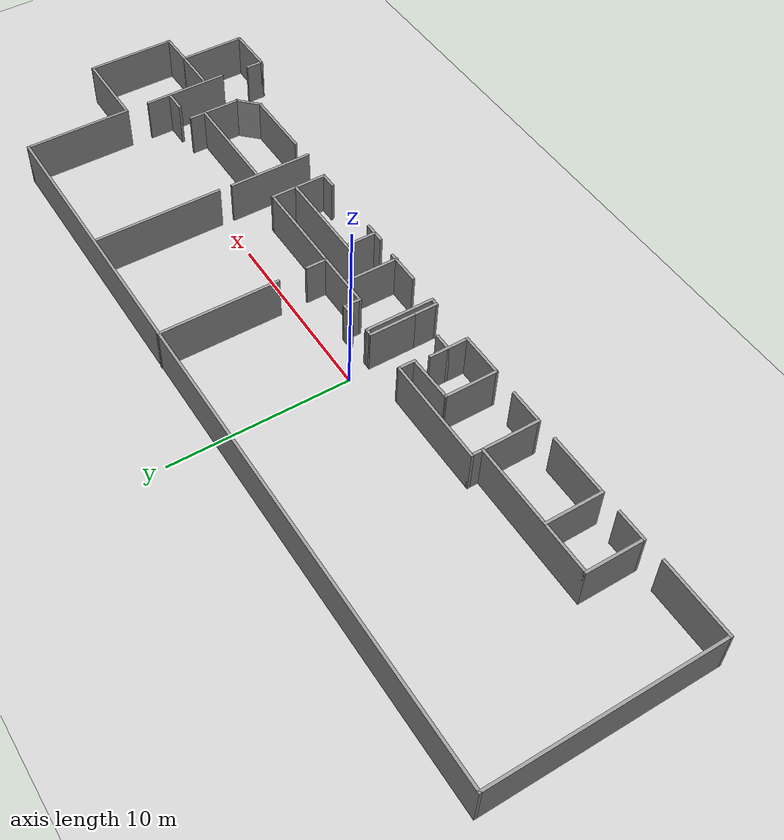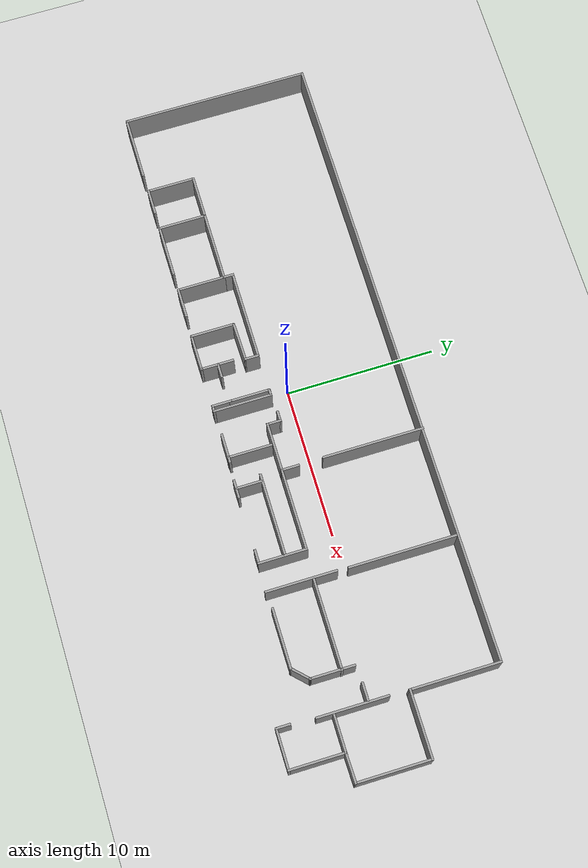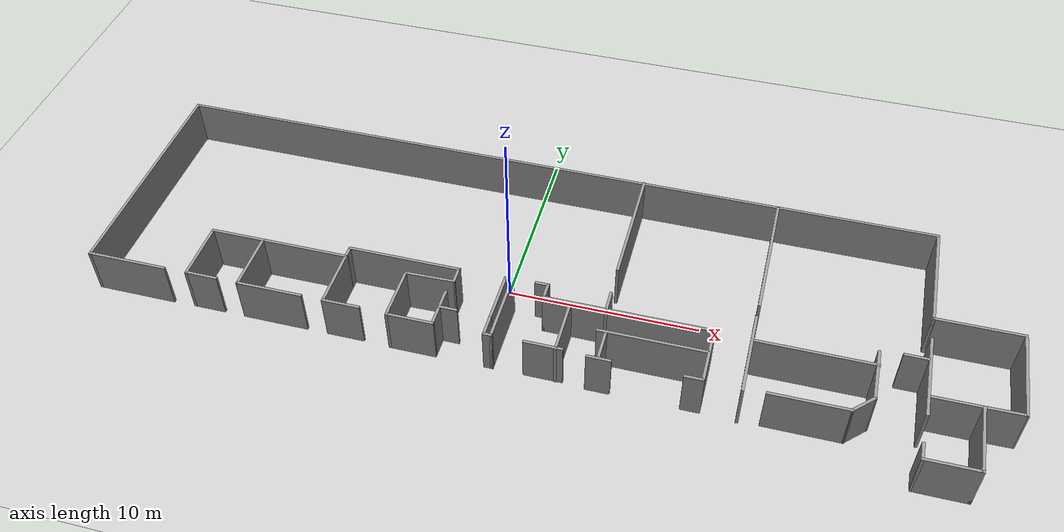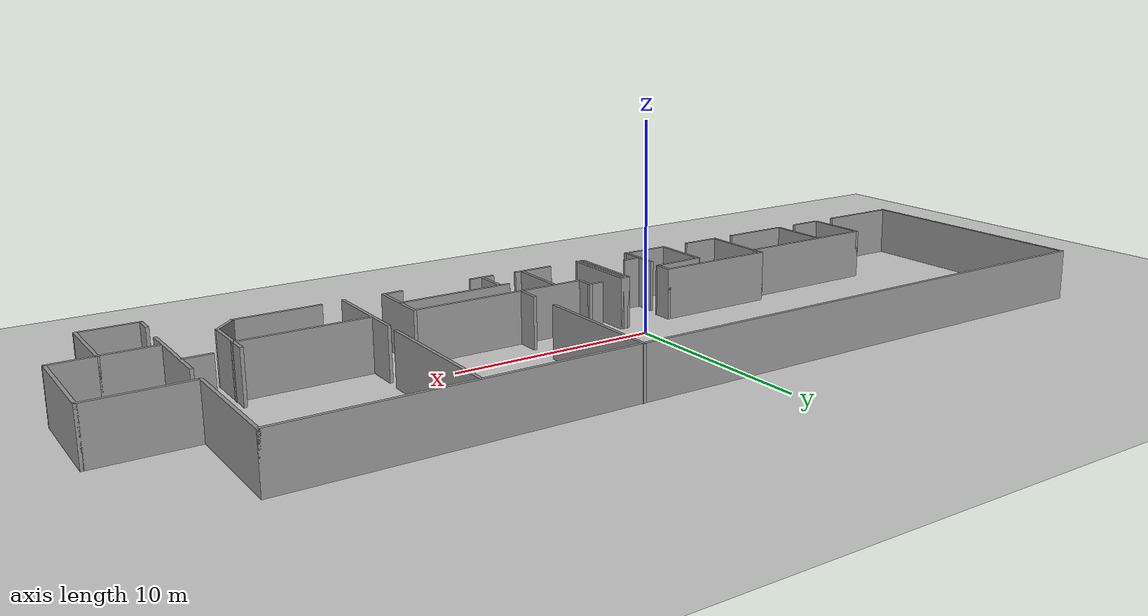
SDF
<sdf version="1.6">
 <world name="default">
  <light name="sun" type="directional">
   <pose>0 0 10 0 -0 0</pose>
   <diffuse>0.8 0.8 0.8 1</diffuse>
   <specular>0.2 0.2 0.2 1</specular>
   <attenuation>
    <range>1000</range>
    <constant>0.9</constant>
    <linear>0.01</linear>
    <quadratic>0.001</quadratic>
   </attenuation>
   <direction>-0.5 0.1 -0.9</direction>
  </light>
  <model name="ground_plane">
   <static>1</static>
   <link name="link">
    <collision name="collision">
     <geometry><plane><normal>0 0 1</normal><size>100 100</size></plane></geometry>
     <surface>
      <contact><collide_bitmask>65535</collide_bitmask></contact>
      <friction><ode><mu>100</mu><mu2>50</mu2></ode></friction>
     </surface>
    </collision>
    <visual name="visual">
     <cast_shadows>0</cast_shadows>
     <geometry><plane><normal>0 0 1</normal><size>100 100</size></plane></geometry>
     <material>
      <script><uri>file://media/materials/scripts/gazebo.material</uri><name>Gazebo/Grey</name></script>
     </material>
    </visual>
   </link>
  </model>
  <gravity>0 0 -9.8</gravity>
  <magnetic_field>6e-06 2.3e-05 -4.2e-05</magnetic_field>
  <atmosphere type="adiabatic"/>
  <physics name="default_physics" default="0" type="ode">
   <max_step_size>0.001</max_step_size>
   <real_time_factor>1</real_time_factor>
   <real_time_update_rate>1000</real_time_update_rate>
  </physics>
  <scene><ambient>0.4 0.4 0.4 1</ambient><background>0.7 0.7 0.7 1</background><shadows>1</shadows></scene>
  <spherical_coordinates>
   <surface_model>EARTH_WGS84</surface_model>
   <latitude_deg>0</latitude_deg>
   <longitude_deg>0</longitude_deg>
   <elevation>0</elevation>
   <heading_deg>0</heading_deg>
  </spherical_coordinates>
  <model name="574_3rd_floor_Labs">
   <pose>2.28282 0.192982 0 0 -0 0</pose>
   <link name="Wall_0">
    <collision name="Wall_0_Collision">
     <geometry><box><size>4.25 0.15 2.5</size></box></geometry>
     <pose>0 0 1.25 0 -0 0</pose>
    </collision>
    <visual name="Wall_0_Visual">
     <pose>0 0 1.25 0 -0 0</pose>
     <geometry><box><size>4.25 0.15 2.5</size></box></geometry>
     <material>
      <script><uri>file://media/materials/scripts/gazebo.material</uri><name>Gazebo/Grey</name></script>
      <ambient>1 1 1 1</ambient>
     </material>
     <meta><layer>0</layer></meta>
    </visual>
    <pose>-21.0506 -5.20048 0 0 -0 3.14159</pose>
   </link>
   <link name="Wall_1">
    <collision name="Wall_1_Collision">
     <geometry><box><size>12.5 0.15 2.5</size></box></geometry>
     <pose>0 0 1.25 0 -0 0</pose>
    </collision>
    <visual name="Wall_1_Visual">
     <pose>0 0 1.25 0 -0 0</pose>
     <geometry><box><size>12.5 0.15 2.5</size></box></geometry>
     <material>
      <script><uri>file://media/materials/scripts/gazebo.material</uri><name>Gazebo/Grey</name></script>
      <ambient>1 1 1 1</ambient>
     </material>
     <meta><layer>0</layer></meta>
    </visual>
    <pose>-23.1006 0.974519 0 0 -0 1.5708</pose>
   </link>
   <link name="Wall_10">
    <collision name="Wall_10_Collision">
     <geometry><box><size>1 0.15 2.5</size></box></geometry>
     <pose>0 0 1.25 0 -0 0</pose>
    </collision>
    <visual name="Wall_10_Visual">
     <pose>0 0 1.25 0 -0 0</pose>
     <geometry><box><size>1 0.15 2.5</size></box></geometry>
     <material>
      <script><uri>file://media/materials/scripts/gazebo.material</uri><name>Gazebo/Grey</name></script>
      <ambient>1 1 1 1</ambient>
     </material>
     <meta><layer>0</layer></meta>
    </visual>
    <pose>-4.55115 -1.8903 0 0 0 -1.5708</pose>
   </link>
   <link name="Wall_12">
    <collision name="Wall_12_Collision">
     <geometry><box><size>3.25 0.15 2.5</size></box></geometry>
     <pose>0 0 1.25 0 -0 0</pose>
    </collision>
    <visual name="Wall_12_Visual">
     <pose>0 0 1.25 0 -0 0</pose>
     <geometry><box><size>3.25 0.15 2.5</size></box></geometry>
     <material>
      <script><uri>file://media/materials/scripts/gazebo.material</uri><name>Gazebo/Grey</name></script>
      <ambient>1 1 1 1</ambient>
     </material>
     <meta><layer>0</layer></meta>
    </visual>
    <pose>-14.9551 -3.61957 0 0 0 -1.5708</pose>
   </link>
   <link name="Wall_13">
    <collision name="Wall_13_Collision">
     <geometry><box><size>3.5 0.15 2.5</size></box></geometry>
     <pose>0 0 1.25 0 -0 0</pose>
    </collision>
    <visual name="Wall_13_Visual">
     <pose>0 0 1.25 0 -0 0</pose>
     <geometry><box><size>3.5 0.15 2.5</size></box></geometry>
     <material>
      <script><uri>file://media/materials/scripts/gazebo.material</uri><name>Gazebo/Grey</name></script>
      <ambient>1 1 1 1</ambient>
     </material>
     <meta><layer>0</layer></meta>
    </visual>
    <pose>-13.2801 -5.16957 0 0 -0 0</pose>
   </link>
   <link name="Wall_15">
    <collision name="Wall_15_Collision">
     <geometry><box><size>3.25 0.15 2.5</size></box></geometry>
     <pose>0 0 1.25 0 -0 0</pose>
    </collision>
    <visual name="Wall_15_Visual">
     <pose>0 0 1.25 0 -0 0</pose>
     <geometry><box><size>3.25 0.15 2.5</size></box></geometry>
     <material>
      <script><uri>file://media/materials/scripts/gazebo.material</uri><name>Gazebo/Grey</name></script>
      <ambient>1 1 1 1</ambient>
     </material>
     <meta><layer>0</layer></meta>
    </visual>
    <pose>-10.4011 -3.6153 0 0 0 -1.5708</pose>
   </link>
   <link name="Wall_16">
    <collision name="Wall_16_Collision">
     <geometry><box><size>2 0.15 2.5</size></box></geometry>
     <pose>0 0 1.25 0 -0 0</pose>
    </collision>
    <visual name="Wall_16_Visual">
     <pose>0 0 1.25 0 -0 0</pose>
     <geometry><box><size>2 0.15 2.5</size></box></geometry>
     <material>
      <script><uri>file://media/materials/scripts/gazebo.material</uri><name>Gazebo/Grey</name></script>
      <ambient>1 1 1 1</ambient>
     </material>
     <meta><layer>0</layer></meta>
    </visual>
    <pose>-9.47615 -5.1653 0 0 -0 0</pose>
   </link>
   <link name="Wall_18">
    <collision name="Wall_18_Collision">
     <geometry><box><size>2.25 0.15 2.5</size></box></geometry>
     <pose>0 0 1.25 0 -0 0</pose>
    </collision>
    <visual name="Wall_18_Visual">
     <pose>0 0 1.25 0 -0 0</pose>
     <geometry><box><size>2.25 0.15 2.5</size></box></geometry>
     <material>
      <script><uri>file://media/materials/scripts/gazebo.material</uri><name>Gazebo/Grey</name></script>
      <ambient>1 1 1 1</ambient>
     </material>
     <meta><layer>0</layer></meta>
    </visual>
    <pose>-4.71805 -4.17493 0 0 0 -1.5708</pose>
   </link>
   <link name="Wall_19">
    <collision name="Wall_19_Collision">
     <geometry><box><size>2.5 0.15 2.5</size></box></geometry>
     <pose>0 0 1.25 0 -0 0</pose>
    </collision>
    <visual name="Wall_19_Visual">
     <pose>0 0 1.25 0 -0 0</pose>
     <geometry><box><size>2.5 0.15 2.5</size></box></geometry>
     <material>
      <script><uri>file://media/materials/scripts/gazebo.material</uri><name>Gazebo/Grey</name></script>
      <ambient>1 1 1 1</ambient>
     </material>
     <meta><layer>0</layer></meta>
    </visual>
    <pose>-5.89305 -5.22493 0 0 -0 3.14159</pose>
   </link>
   <link name="Wall_2">
    <collision name="Wall_2_Collision">
     <geometry><box><size>42 0.15 2.5</size></box></geometry>
     <pose>0 0 1.25 0 -0 0</pose>
    </collision>
    <visual name="Wall_2_Visual">
     <pose>0 0 1.25 0 -0 0</pose>
     <geometry><box><size>42 0.15 2.5</size></box></geometry>
     <material>
      <script><uri>file://media/materials/scripts/gazebo.material</uri><name>Gazebo/Grey</name></script>
      <ambient>1 1 1 1</ambient>
     </material>
     <meta><layer>0</layer></meta>
    </visual>
    <pose>-2.17563 7.14952 0 0 -0 0</pose>
   </link>
   <link name="Wall_20">
    <collision name="Wall_20_Collision">
     <geometry><box><size>3 0.15 2.5</size></box></geometry>
     <pose>0 0 1.25 0 -0 0</pose>
    </collision>
    <visual name="Wall_20_Visual">
     <pose>0 0 1.25 0 -0 0</pose>
     <geometry><box><size>3 0.15 2.5</size></box></geometry>
     <material>
      <script><uri>file://media/materials/scripts/gazebo.material</uri><name>Gazebo/Grey</name></script>
      <ambient>1 1 1 1</ambient>
     </material>
     <meta><layer>0</layer></meta>
    </visual>
    <pose>-7.06805 -3.79993 0 0 -0 1.5708</pose>
   </link>
   <link name="Wall_21">
    <collision name="Wall_21_Collision">
     <geometry><box><size>2.66761 0.15 2.5</size></box></geometry>
     <pose>0 0 1.25 0 -0 0</pose>
    </collision>
    <visual name="Wall_21_Visual">
     <pose>0 0 1.25 0 -0 0</pose>
     <geometry><box><size>2.66761 0.15 2.5</size></box></geometry>
     <material>
      <script><uri>file://media/materials/scripts/gazebo.material</uri><name>Gazebo/Grey</name></script>
      <ambient>1 1 1 1</ambient>
     </material>
     <meta><layer>0</layer></meta>
    </visual>
    <pose>-5.8096 -2.34512 0 0 -0 0.023688</pose>
   </link>
   <link name="Wall_24">
    <collision name="Wall_24_Collision">
     <geometry><box><size>6.75 0.15 2.5</size></box></geometry>
     <pose>0 0 1.25 0 -0 0</pose>
    </collision>
    <visual name="Wall_24_Visual">
     <pose>0 0 1.25 0 -0 0</pose>
     <geometry><box><size>6.75 0.15 2.5</size></box></geometry>
     <material>
      <script><uri>file://media/materials/scripts/gazebo.material</uri><name>Gazebo/Grey</name></script>
      <ambient>1 1 1 1</ambient>
     </material>
     <meta><layer>0</layer></meta>
    </visual>
    <pose>3.19717 3.88244 0 0 0 -1.5708</pose>
   </link>
   <link name="Wall_26">
    <collision name="Wall_26_Collision">
     <geometry><box><size>7.25 0.15 2.5</size></box></geometry>
     <pose>0 0 1.25 0 -0 0</pose>
    </collision>
    <visual name="Wall_26_Visual">
     <pose>0 0 1.25 0 -0 0</pose>
     <geometry><box><size>7.25 0.15 2.5</size></box></geometry>
     <material>
      <script><uri>file://media/materials/scripts/gazebo.material</uri><name>Gazebo/Grey</name></script>
      <ambient>1 1 1 1</ambient>
     </material>
     <meta><layer>0</layer></meta>
    </visual>
    <pose>10.444 3.56209 0 0 0 -1.5708</pose>
   </link>
   <link name="Wall_28">
    <collision name="Wall_28_Collision">
     <geometry><box><size>1 0.15 2.5</size></box></geometry>
     <pose>0 0 1.25 0 -0 0</pose>
    </collision>
    <visual name="Wall_28_Visual">
     <pose>0 0 1.25 0 -0 0</pose>
     <geometry><box><size>1 0.15 2.5</size></box></geometry>
     <material>
      <script><uri>file://media/materials/scripts/gazebo.material</uri><name>Gazebo/Grey</name></script>
      <ambient>1 1 1 1</ambient>
     </material>
     <meta><layer>0</layer></meta>
    </visual>
    <pose>-4.29305 -4.10994 0 0 -0 0</pose>
   </link>
   <link name="Wall_3">
    <collision name="Wall_3_Collision">
     <geometry><box><size>6 0.15 2.5</size></box></geometry>
     <pose>0 0 1.25 0 -0 0</pose>
    </collision>
    <visual name="Wall_3_Visual">
     <pose>0 0 1.25 0 -0 0</pose>
     <geometry><box><size>6 0.15 2.5</size></box></geometry>
     <material>
      <script><uri>file://media/materials/scripts/gazebo.material</uri><name>Gazebo/Grey</name></script>
      <ambient>1 1 1 1</ambient>
     </material>
     <meta><layer>0</layer></meta>
    </visual>
    <pose>18.7494 4.22452 0 0 0 -1.5708</pose>
   </link>
   <link name="Wall_30">
    <collision name="Wall_30_Collision">
     <geometry><box><size>2.75 0.15 2.5</size></box></geometry>
     <pose>0 0 1.25 0 -0 0</pose>
    </collision>
    <visual name="Wall_30_Visual">
     <pose>0 0 1.25 0 -0 0</pose>
     <geometry><box><size>2.75 0.15 2.5</size></box></geometry>
     <material>
      <script><uri>file://media/materials/scripts/gazebo.material</uri><name>Gazebo/Grey</name></script>
      <ambient>1 1 1 1</ambient>
     </material>
     <meta><layer>0</layer></meta>
    </visual>
    <pose>-2.11482 -2.73958 0 0 -0 1.5708</pose>
   </link>
   <link name="Wall_31">
    <collision name="Wall_31_Collision">
     <geometry><box><size>0.5 0.15 2.5</size></box></geometry>
     <pose>0 0 1.25 0 -0 0</pose>
    </collision>
    <visual name="Wall_31_Visual">
     <pose>0 0 1.25 0 -0 0</pose>
     <geometry><box><size>0.5 0.15 2.5</size></box></geometry>
     <material>
      <script><uri>file://media/materials/scripts/gazebo.material</uri><name>Gazebo/Grey</name></script>
      <ambient>1 1 1 1</ambient>
     </material>
     <meta><layer>0</layer></meta>
    </visual>
    <pose>-1.93982 -1.43958 0 0 -0 0</pose>
   </link>
   <link name="Wall_32">
    <collision name="Wall_32_Collision">
     <geometry><box><size>3.92964 0.15 2.5</size></box></geometry>
     <pose>0 0 1.25 0 -0 0</pose>
    </collision>
    <visual name="Wall_32_Visual">
     <pose>0 0 1.25 0 -0 0</pose>
     <geometry><box><size>3.92964 0.15 2.5</size></box></geometry>
     <material>
      <script><uri>file://media/materials/scripts/gazebo.material</uri><name>Gazebo/Grey</name></script>
      <ambient>1 1 1 1</ambient>
     </material>
     <meta><layer>0</layer></meta>
    </visual>
    <pose>-1.76482 -3.3294 0 0 0 -1.5708</pose>
   </link>
   <link name="Wall_35">
    <collision name="Wall_35_Collision">
     <geometry><box><size>0.5 0.15 2.5</size></box></geometry>
     <pose>0 0 1.25 0 -0 0</pose>
    </collision>
    <visual name="Wall_35_Visual">
     <pose>0 0 1.25 0 -0 0</pose>
     <geometry><box><size>0.5 0.15 2.5</size></box></geometry>
     <material>
      <script><uri>file://media/materials/scripts/gazebo.material</uri><name>Gazebo/Grey</name></script>
      <ambient>1 1 1 1</ambient>
     </material>
     <meta><layer>0</layer></meta>
    </visual>
    <pose>-1.93982 -5.21922 0 0 -0 3.14159</pose>
   </link>
   <link name="Wall_36">
    <collision name="Wall_36_Collision">
     <geometry><box><size>1.32964 0.15 2.5</size></box></geometry>
     <pose>0 0 1.25 0 -0 0</pose>
    </collision>
    <visual name="Wall_36_Visual">
     <pose>0 0 1.25 0 -0 0</pose>
     <geometry><box><size>1.32964 0.15 2.5</size></box></geometry>
     <material>
      <script><uri>file://media/materials/scripts/gazebo.material</uri><name>Gazebo/Grey</name></script>
      <ambient>1 1 1 1</ambient>
     </material>
     <meta><layer>0</layer></meta>
    </visual>
    <pose>-2.11482 -4.6294 0 0 -0 1.5708</pose>
   </link>
   <link name="Wall_38">
    <collision name="Wall_38_Collision">
     <geometry><box><size>4.75 0.15 2.5</size></box></geometry>
     <pose>0 0 1.25 0 -0 0</pose>
    </collision>
    <visual name="Wall_38_Visual">
     <pose>0 0 1.25 0 -0 0</pose>
     <geometry><box><size>4.75 0.15 2.5</size></box></geometry>
     <material>
      <script><uri>file://media/materials/scripts/gazebo.material</uri><name>Gazebo/Grey</name></script>
      <ambient>1 1 1 1</ambient>
     </material>
     <meta><layer>0</layer></meta>
    </visual>
    <pose>10.4088 -3.10313 0 0 0 -1.5708</pose>
   </link>
   <link name="Wall_40">
    <collision name="Wall_40_Collision">
     <geometry><box><size>2 0.15 2.5</size></box></geometry>
     <pose>0 0 1.25 0 -0 0</pose>
    </collision>
    <visual name="Wall_40_Visual">
     <pose>0 0 1.25 0 -0 0</pose>
     <geometry><box><size>2 0.15 2.5</size></box></geometry>
     <material>
      <script><uri>file://media/materials/scripts/gazebo.material</uri><name>Gazebo/Grey</name></script>
      <ambient>1 1 1 1</ambient>
     </material>
     <meta><layer>0</layer></meta>
    </visual>
    <pose>0.819218 -5.19149 0 0 -0 0</pose>
   </link>
   <link name="Wall_42">
    <collision name="Wall_42_Collision">
     <geometry><box><size>3 0.15 2.5</size></box></geometry>
     <pose>0 0 1.25 0 -0 0</pose>
    </collision>
    <visual name="Wall_42_Visual">
     <pose>0 0 1.25 0 -0 0</pose>
     <geometry><box><size>3 0.15 2.5</size></box></geometry>
     <material>
      <script><uri>file://media/materials/scripts/gazebo.material</uri><name>Gazebo/Grey</name></script>
      <ambient>1 1 1 1</ambient>
     </material>
     <meta><layer>0</layer></meta>
    </visual>
    <pose>1.44208 -3.80167 0 0 -0 1.5708</pose>
   </link>
   <link name="Wall_44">
    <collision name="Wall_44_Collision">
     <geometry><box><size>8.5 0.15 2.5</size></box></geometry>
     <pose>0 0 1.25 0 -0 0</pose>
    </collision>
    <visual name="Wall_44_Visual">
     <pose>0 0 1.25 0 -0 0</pose>
     <geometry><box><size>8.5 0.15 2.5</size></box></geometry>
     <material>
      <script><uri>file://media/materials/scripts/gazebo.material</uri><name>Gazebo/Grey</name></script>
      <ambient>1 1 1 1</ambient>
     </material>
     <meta><layer>0</layer></meta>
    </visual>
    <pose>4.24511 -2.2013 0 0 -0 0</pose>
   </link>
   <link name="Wall_46">
    <collision name="Wall_46_Collision">
     <geometry><box><size>1 0.15 2.5</size></box></geometry>
     <pose>0 0 1.25 0 -0 0</pose>
    </collision>
    <visual name="Wall_46_Visual">
     <pose>0 0 1.25 0 -0 0</pose>
     <geometry><box><size>1 0.15 2.5</size></box></geometry>
     <material>
      <script><uri>file://media/materials/scripts/gazebo.material</uri><name>Gazebo/Grey</name></script>
      <ambient>1 1 1 1</ambient>
     </material>
     <meta><layer>0</layer></meta>
    </visual>
    <pose>8.1289 -5.29703 0 0 -0 0</pose>
   </link>
   <link name="Wall_47">
    <collision name="Wall_47_Collision">
     <geometry><box><size>3.25 0.15 2.5</size></box></geometry>
     <pose>0 0 1.25 0 -0 0</pose>
    </collision>
    <visual name="Wall_47_Visual">
     <pose>0 0 1.25 0 -0 0</pose>
     <geometry><box><size>3.25 0.15 2.5</size></box></geometry>
     <material>
      <script><uri>file://media/materials/scripts/gazebo.material</uri><name>Gazebo/Grey</name></script>
      <ambient>1 1 1 1</ambient>
     </material>
     <meta><layer>0</layer></meta>
    </visual>
    <pose>8.5539 -3.74703 0 0 -0 1.5708</pose>
   </link>
   <link name="Wall_5">
    <collision name="Wall_5_Collision">
     <geometry><box><size>1.75 0.15 2.5</size></box></geometry>
     <pose>0 0 1.25 0 -0 0</pose>
    </collision>
    <visual name="Wall_5_Visual">
     <pose>0 0 1.25 0 -0 0</pose>
     <geometry><box><size>1.75 0.15 2.5</size></box></geometry>
     <material>
      <script><uri>file://media/materials/scripts/gazebo.material</uri><name>Gazebo/Grey</name></script>
      <ambient>1 1 1 1</ambient>
     </material>
     <meta><layer>0</layer></meta>
    </visual>
    <pose>-16.9511 -5.1653 0 0 -0 3.14159</pose>
   </link>
   <link name="Wall_50">
    <collision name="Wall_50_Collision">
     <geometry><box><size>4 0.15 2.5</size></box></geometry>
     <pose>0 0 1.25 0 -0 0</pose>
    </collision>
    <visual name="Wall_50_Visual">
     <pose>0 0 1.25 0 -0 0</pose>
     <geometry><box><size>4 0.15 2.5</size></box></geometry>
     <material>
      <script><uri>file://media/materials/scripts/gazebo.material</uri><name>Gazebo/Grey</name></script>
      <ambient>1 1 1 1</ambient>
     </material>
     <meta><layer>0</layer></meta>
    </visual>
    <pose>13.4634 -5.29703 0 0 -0 0</pose>
   </link>
   <link name="Wall_53">
    <collision name="Wall_53_Collision">
     <geometry><box><size>1.5 0.15 2.5</size></box></geometry>
     <pose>0 0 1.25 0 -0 0</pose>
    </collision>
    <visual name="Wall_53_Visual">
     <pose>0 0 1.25 0 -0 0</pose>
     <geometry><box><size>1.5 0.15 2.5</size></box></geometry>
     <material>
      <script><uri>file://media/materials/scripts/gazebo.material</uri><name>Gazebo/Grey</name></script>
      <ambient>1 1 1 1</ambient>
     </material>
     <meta><layer>0</layer></meta>
    </visual>
    <pose>15.8657 -4.81973 0 0 -0 0.785398</pose>
   </link>
   <link name="Wall_54">
    <collision name="Wall_54_Collision">
     <geometry><box><size>3 0.15 2.5</size></box></geometry>
     <pose>0 0 1.25 0 -0 0</pose>
    </collision>
    <visual name="Wall_54_Visual">
     <pose>0 0 1.25 0 -0 0</pose>
     <geometry><box><size>3 0.15 2.5</size></box></geometry>
     <material>
      <script><uri>file://media/materials/scripts/gazebo.material</uri><name>Gazebo/Grey</name></script>
      <ambient>1 1 1 1</ambient>
     </material>
     <meta><layer>0</layer></meta>
    </visual>
    <pose>16.343 -2.91743 0 0 -0 1.5708</pose>
   </link>
   <link name="Wall_56">
    <collision name="Wall_56_Collision">
     <geometry><box><size>1.25 0.15 2.5</size></box></geometry>
     <pose>0 0 1.25 0 -0 0</pose>
    </collision>
    <visual name="Wall_56_Visual">
     <pose>0 0 1.25 0 -0 0</pose>
     <geometry><box><size>1.25 0.15 2.5</size></box></geometry>
     <material>
      <script><uri>file://media/materials/scripts/gazebo.material</uri><name>Gazebo/Grey</name></script>
      <ambient>1 1 1 1</ambient>
     </material>
     <meta><layer>0</layer></meta>
    </visual>
    <pose>18.0688 -1.35701 0 0 -0 0</pose>
   </link>
   <link name="Wall_58">
    <collision name="Wall_58_Collision">
     <geometry><box><size>4.75 0.15 2.5</size></box></geometry>
     <pose>0 0 1.25 0 -0 0</pose>
    </collision>
    <visual name="Wall_58_Visual">
     <pose>0 0 1.25 0 -0 0</pose>
     <geometry><box><size>4.75 0.15 2.5</size></box></geometry>
     <material>
      <script><uri>file://media/materials/scripts/gazebo.material</uri><name>Gazebo/Grey</name></script>
      <ambient>1 1 1 1</ambient>
     </material>
     <meta><layer>0</layer></meta>
    </visual>
    <pose>18.7149 -2.35539 0 0 0 -1.5708</pose>
   </link>
   <link name="Wall_6">
    <collision name="Wall_6_Collision">
     <geometry><box><size>3.25 0.15 2.5</size></box></geometry>
     <pose>0 0 1.25 0 -0 0</pose>
    </collision>
    <visual name="Wall_6_Visual">
     <pose>0 0 1.25 0 -0 0</pose>
     <geometry><box><size>3.25 0.15 2.5</size></box></geometry>
     <material>
      <script><uri>file://media/materials/scripts/gazebo.material</uri><name>Gazebo/Grey</name></script>
      <ambient>1 1 1 1</ambient>
     </material>
     <meta><layer>0</layer></meta>
    </visual>
    <pose>-17.7511 -3.6153 0 0 -0 1.5708</pose>
   </link>
   <link name="Wall_60">
    <collision name="Wall_60_Collision">
     <geometry><box><size>2.5 0.15 2.5</size></box></geometry>
     <pose>0 0 1.25 0 -0 0</pose>
    </collision>
    <visual name="Wall_60_Visual">
     <pose>0 0 1.25 0 -0 0</pose>
     <geometry><box><size>2.5 0.15 2.5</size></box></geometry>
     <material>
      <script><uri>file://media/materials/scripts/gazebo.material</uri><name>Gazebo/Grey</name></script>
      <ambient>1 1 1 1</ambient>
     </material>
     <meta><layer>0</layer></meta>
    </visual>
    <pose>20.0332 -3.58244 0 0 -0 0</pose>
   </link>
   <link name="Wall_61">
    <collision name="Wall_61_Collision">
     <geometry><box><size>3.75 0.15 2.5</size></box></geometry>
     <pose>0 0 1.25 0 -0 0</pose>
    </collision>
    <visual name="Wall_61_Visual">
     <pose>0 0 1.25 0 -0 0</pose>
     <geometry><box><size>3.75 0.15 2.5</size></box></geometry>
     <material>
      <script><uri>file://media/materials/scripts/gazebo.material</uri><name>Gazebo/Grey</name></script>
      <ambient>1 1 1 1</ambient>
     </material>
     <meta><layer>0</layer></meta>
    </visual>
    <pose>21.2082 -5.38244 0 0 0 -1.5708</pose>
   </link>
   <link name="Wall_62">
    <collision name="Wall_62_Collision">
     <geometry><box><size>2.75 0.15 2.5</size></box></geometry>
     <pose>0 0 1.25 0 -0 0</pose>
    </collision>
    <visual name="Wall_62_Visual">
     <pose>0 0 1.25 0 -0 0</pose>
     <geometry><box><size>2.75 0.15 2.5</size></box></geometry>
     <material>
      <script><uri>file://media/materials/scripts/gazebo.material</uri><name>Gazebo/Grey</name></script>
      <ambient>1 1 1 1</ambient>
     </material>
     <meta><layer>0</layer></meta>
    </visual>
    <pose>19.9082 -7.18244 0 0 -0 3.14159</pose>
   </link>
   <link name="Wall_63">
    <collision name="Wall_63_Collision">
     <geometry><box><size>1 0.15 2.5</size></box></geometry>
     <pose>0 0 1.25 0 -0 0</pose>
    </collision>
    <visual name="Wall_63_Visual">
     <pose>0 0 1.25 0 -0 0</pose>
     <geometry><box><size>1 0.15 2.5</size></box></geometry>
     <material>
      <script><uri>file://media/materials/scripts/gazebo.material</uri><name>Gazebo/Grey</name></script>
      <ambient>1 1 1 1</ambient>
     </material>
     <meta><layer>0</layer></meta>
    </visual>
    <pose>18.6082 -6.75744 0 0 -0 1.5708</pose>
   </link>
   <link name="Wall_65">
    <collision name="Wall_65_Collision">
     <geometry><box><size>4.5 0.15 2.5</size></box></geometry>
     <pose>0 0 1.25 0 -0 0</pose>
    </collision>
    <visual name="Wall_65_Visual">
     <pose>0 0 1.25 0 -0 0</pose>
     <geometry><box><size>4.5 0.15 2.5</size></box></geometry>
     <material>
      <script><uri>file://media/materials/scripts/gazebo.material</uri><name>Gazebo/Grey</name></script>
      <ambient>1 1 1 1</ambient>
     </material>
     <meta><layer>0</layer></meta>
    </visual>
    <pose>20.9244 1.29952 0 0 -0 0</pose>
   </link>
   <link name="Wall_66">
    <collision name="Wall_66_Collision">
     <geometry><box><size>5 0.15 2.5</size></box></geometry>
     <pose>0 0 1.25 0 -0 0</pose>
    </collision>
    <visual name="Wall_66_Visual">
     <pose>0 0 1.25 0 -0 0</pose>
     <geometry><box><size>5 0.15 2.5</size></box></geometry>
     <material>
      <script><uri>file://media/materials/scripts/gazebo.material</uri><name>Gazebo/Grey</name></script>
      <ambient>1 1 1 1</ambient>
     </material>
     <meta><layer>0</layer></meta>
    </visual>
    <pose>23.0994 -1.12548 0 0 0 -1.5708</pose>
   </link>
   <link name="Wall_67">
    <collision name="Wall_67_Collision">
     <geometry><box><size>2.04146 0.15 2.5</size></box></geometry>
     <pose>0 0 1.25 0 -0 0</pose>
    </collision>
    <visual name="Wall_67_Visual">
     <pose>0 0 1.25 0 -0 0</pose>
     <geometry><box><size>2.04146 0.15 2.5</size></box></geometry>
     <material>
      <script><uri>file://media/materials/scripts/gazebo.material</uri><name>Gazebo/Grey</name></script>
      <ambient>1 1 1 1</ambient>
     </material>
     <meta><layer>0</layer></meta>
    </visual>
    <pose>22.1538 -3.56646 0 0 0 -3.12469</pose>
   </link>
   <link name="Wall_69">
    <collision name="Wall_69_Collision">
     <geometry><box><size>1 0.15 2.5</size></box></geometry>
     <pose>0 0 1.25 0 -0 0</pose>
    </collision>
    <visual name="Wall_69_Visual">
     <pose>0 0 1.25 0 -0 0</pose>
     <geometry><box><size>1 0.15 2.5</size></box></geometry>
     <material>
      <script><uri>file://media/materials/scripts/gazebo.material</uri><name>Gazebo/Grey</name></script>
      <ambient>1 1 1 1</ambient>
     </material>
     <meta><layer>0</layer></meta>
    </visual>
    <pose>0.070112 -1.7763 0 0 -0 1.5708</pose>
   </link>
   <link name="Wall_7">
    <collision name="Wall_7_Collision">
     <geometry><box><size>7.5 0.15 2.5</size></box></geometry>
     <pose>0 0 1.25 0 -0 0</pose>
    </collision>
    <visual name="Wall_7_Visual">
     <pose>0 0 1.25 0 -0 0</pose>
     <geometry><box><size>7.5 0.15 2.5</size></box></geometry>
     <material>
      <script><uri>file://media/materials/scripts/gazebo.material</uri><name>Gazebo/Grey</name></script>
      <ambient>1 1 1 1</ambient>
     </material>
     <meta><layer>0</layer></meta>
    </visual>
    <pose>-14.0761 -2.0653 0 0 -0 0</pose>
   </link>
   <link name="Wall_70">
    <collision name="Wall_70_Collision">
     <geometry><box><size>0.75 0.15 2.5</size></box></geometry>
     <pose>0 0 1.25 0 -0 0</pose>
    </collision>
    <visual name="Wall_70_Visual">
     <pose>0 0 1.25 0 -0 0</pose>
     <geometry><box><size>0.75 0.15 2.5</size></box></geometry>
     <material>
      <script><uri>file://media/materials/scripts/gazebo.material</uri><name>Gazebo/Grey</name></script>
      <ambient>1 1 1 1</ambient>
     </material>
     <meta><layer>0</layer></meta>
    </visual>
    <pose>-0.229888 -1.3513 0 0 -0 3.14159</pose>
   </link>
   <link name="Wall_72">
    <collision name="Wall_72_Collision">
     <geometry><box><size>1.25 0.15 2.5</size></box></geometry>
     <pose>0 0 1.25 0 -0 0</pose>
    </collision>
    <visual name="Wall_72_Visual">
     <pose>0 0 1.25 0 -0 0</pose>
     <geometry><box><size>1.25 0.15 2.5</size></box></geometry>
     <material>
      <script><uri>file://media/materials/scripts/gazebo.material</uri><name>Gazebo/Grey</name></script>
      <ambient>1 1 1 1</ambient>
     </material>
     <meta><layer>0</layer></meta>
    </visual>
    <pose>3.56558 -5.29474 0 0 -0 0</pose>
   </link>
   <link name="Wall_74">
    <collision name="Wall_74_Collision">
     <geometry><box><size>5.5 0.15 2.5</size></box></geometry>
     <pose>0 0 1.25 0 -0 0</pose>
    </collision>
    <visual name="Wall_74_Visual">
     <pose>0 0 1.25 0 -0 0</pose>
     <geometry><box><size>5.5 0.15 2.5</size></box></geometry>
     <material>
      <script><uri>file://media/materials/scripts/gazebo.material</uri><name>Gazebo/Grey</name></script>
      <ambient>1 1 1 1</ambient>
     </material>
     <meta><layer>0</layer></meta>
    </visual>
    <pose>5.81294 -3.58168 0 0 -0 0</pose>
   </link>
   <link name="Wall_76">
    <collision name="Wall_76_Collision">
     <geometry><box><size>1.75 0.15 2.5</size></box></geometry>
     <pose>0 0 1.25 0 -0 0</pose>
    </collision>
    <visual name="Wall_76_Visual">
     <pose>0 0 1.25 0 -0 0</pose>
     <geometry><box><size>1.75 0.15 2.5</size></box></geometry>
     <material>
      <script><uri>file://media/materials/scripts/gazebo.material</uri><name>Gazebo/Grey</name></script>
      <ambient>1 1 1 1</ambient>
     </material>
     <meta><layer>0</layer></meta>
    </visual>
    <pose>3.53562 -4.46415 0 0 -0 1.5708</pose>
   </link>
   <link name="Wall_78">
    <collision name="Wall_78_Collision">
     <geometry><box><size>1.25 0.15 2.5</size></box></geometry>
     <pose>0 0 1.25 0 -0 0</pose>
    </collision>
    <visual name="Wall_78_Visual">
     <pose>0 0 1.25 0 -0 0</pose>
     <geometry><box><size>1.25 0.15 2.5</size></box></geometry>
     <material>
      <script><uri>file://media/materials/scripts/gazebo.material</uri><name>Gazebo/Grey</name></script>
      <ambient>1 1 1 1</ambient>
     </material>
     <meta><layer>0</layer></meta>
    </visual>
    <pose>3.22971 -1.65512 0 0 -0 1.5708</pose>
   </link>
   <link name="Wall_8">
    <collision name="Wall_8_Collision">
     <geometry><box><size>0.75 0.15 2.5</size></box></geometry>
     <pose>0 0 1.25 0 -0 0</pose>
    </collision>
    <visual name="Wall_8_Visual">
     <pose>0 0 1.25 0 -0 0</pose>
     <geometry><box><size>0.75 0.15 2.5</size></box></geometry>
     <material>
      <script><uri>file://media/materials/scripts/gazebo.material</uri><name>Gazebo/Grey</name></script>
      <ambient>1 1 1 1</ambient>
     </material>
     <meta><layer>0</layer></meta>
    </visual>
    <pose>-10.4011 -1.7653 0 0 -0 1.5708</pose>
   </link>
   <link name="Wall_80">
    <collision name="Wall_80_Collision">
     <geometry><box><size>6 0.15 2.5</size></box></geometry>
     <pose>0 0 1.25 0 -0 0</pose>
    </collision>
    <visual name="Wall_80_Visual">
     <pose>0 0 1.25 0 -0 0</pose>
     <geometry><box><size>6 0.15 2.5</size></box></geometry>
     <material>
      <script><uri>file://media/materials/scripts/gazebo.material</uri><name>Gazebo/Grey</name></script>
      <ambient>1 1 1 1</ambient>
     </material>
     <meta><layer>0</layer></meta>
    </visual>
    <pose>13.453 -2.3154 0 0 -0 3.14159</pose>
   </link>
   <link name="Wall_9">
    <collision name="Wall_9_Collision">
     <geometry><box><size>6 0.15 2.5</size></box></geometry>
     <pose>0 0 1.25 0 -0 0</pose>
    </collision>
    <visual name="Wall_9_Visual">
     <pose>0 0 1.25 0 -0 0</pose>
     <geometry><box><size>6 0.15 2.5</size></box></geometry>
     <material>
      <script><uri>file://media/materials/scripts/gazebo.material</uri><name>Gazebo/Grey</name></script>
      <ambient>1 1 1 1</ambient>
     </material>
     <meta><layer>0</layer></meta>
    </visual>
    <pose>-7.47615 -1.4653 0 0 -0 0</pose>
   </link>
   <static>1</static>
  </model>
 </world>
</sdf>
